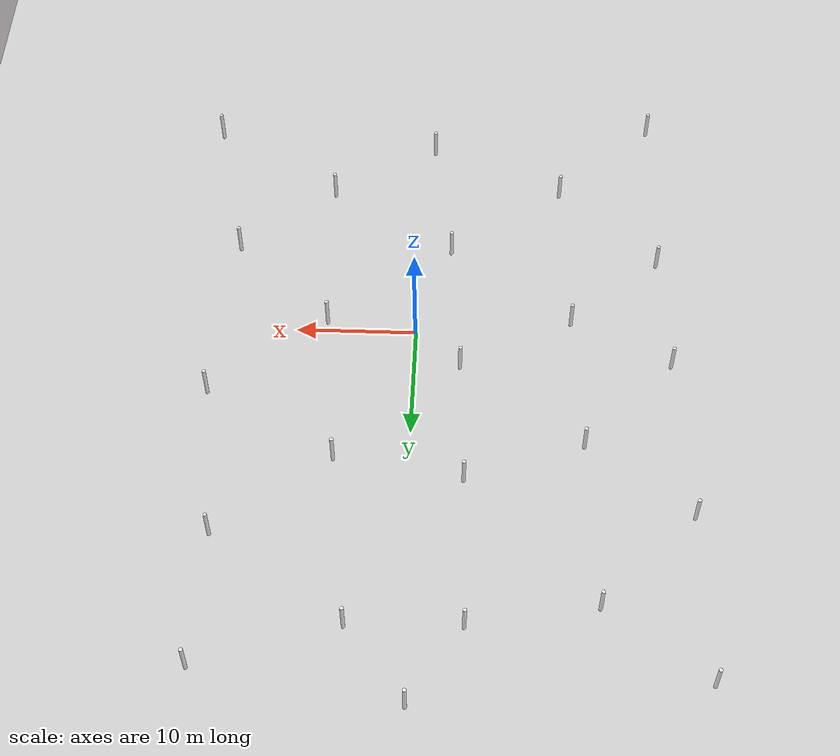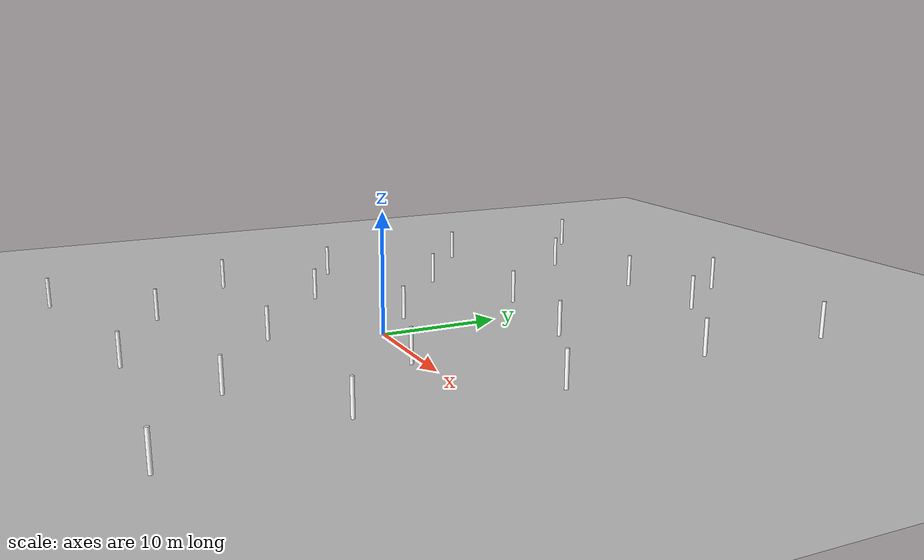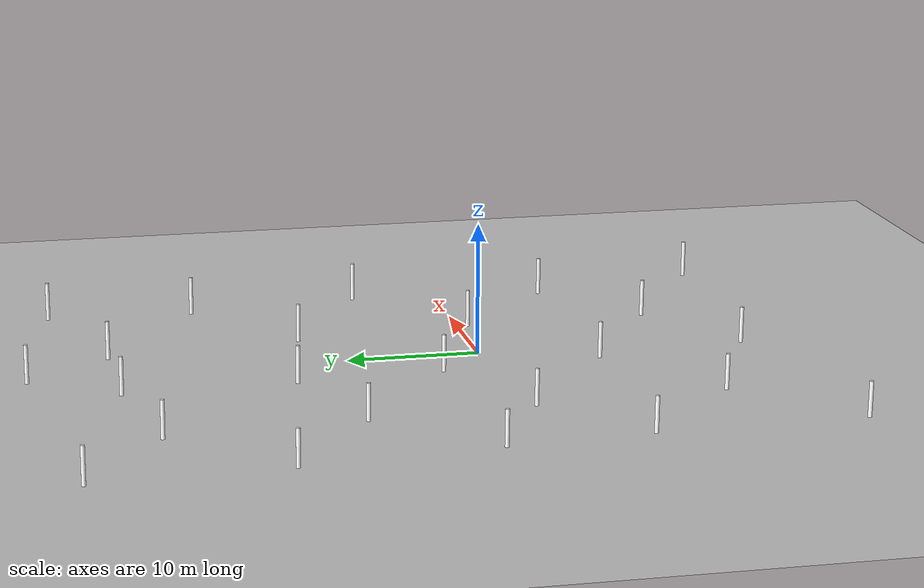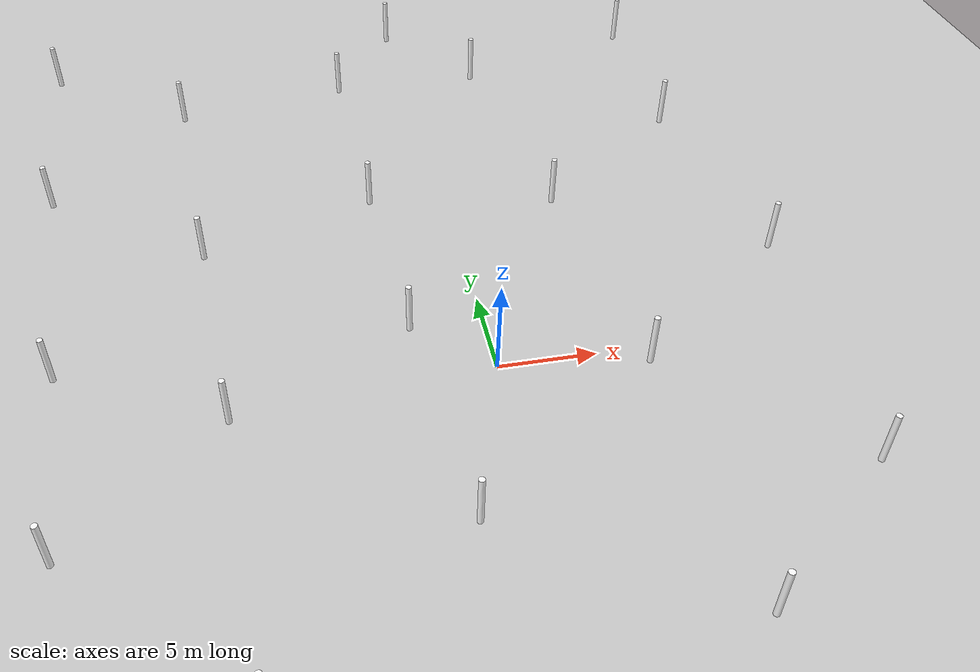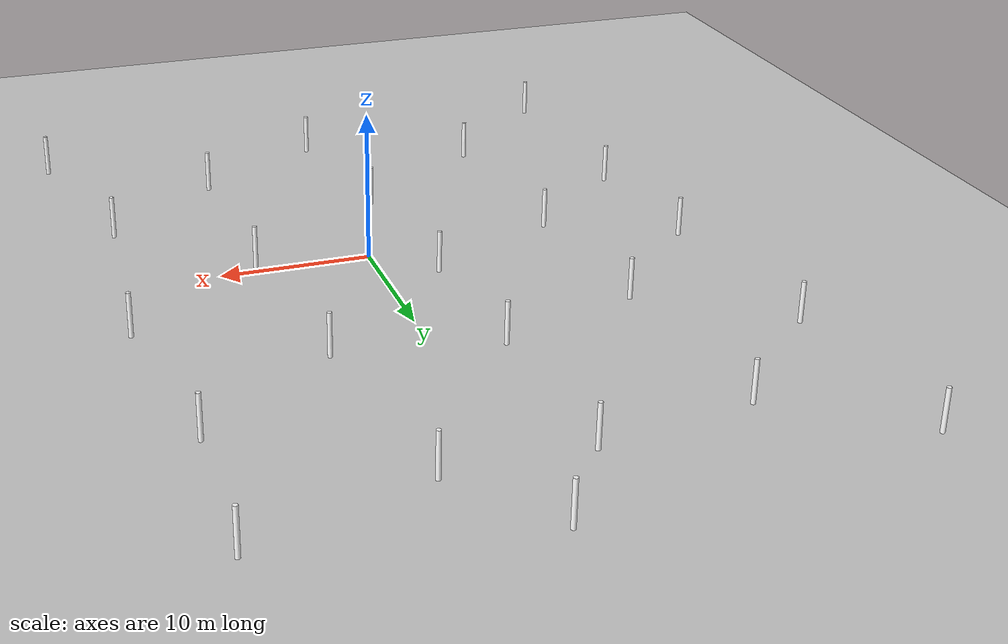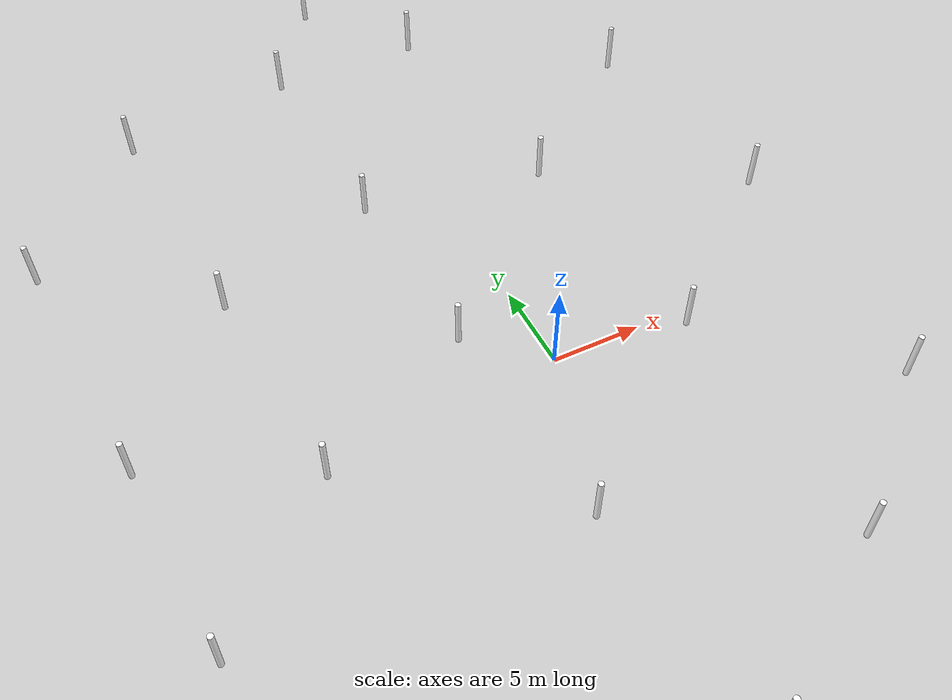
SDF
<sdf version="1.6">
  <world name="default">
    <include>
      <uri>model://sun</uri>
    </include>
    <include>
      <uri>model://ground_plane</uri>
    </include>
    <model name="SparsePillars">
      <pose>0 0 -1.5  0 0 0</pose>
      <static>true</static>
      <link name="up">
        <visual name="visual">
          <geometry>
            <mesh><uri>file:///home/huiyulin/Coding/TARE/multi_planning/Simulator/mrsl2_ws/src/mrsl_quadrotor/mrsl_quadrotor_description/worlds/SparsePillars.dae</uri></mesh>
          </geometry>
        </visual>
        <collision name='pillars'>
          <laser_retro>0</laser_retro>
          <max_contacts>10</max_contacts>
          <pose frame=''>0 0 -0.001 0 -0 0</pose>
          <geometry>
            <mesh>
              <uri>/home/huiyulin/Coding/TARE/multi_planning/Simulator/mrsl2_ws/src/mrsl_quadrotor/mrsl_quadrotor_description/worlds/SparsePillars.dae</uri>
              <scale>1 1 1</scale>
            </mesh>
          </geometry>
          <surface>
            <friction>
              <ode>
                <mu>1</mu>
                <mu2>1</mu2>
                <fdir1>0 0 0</fdir1>
                <slip1>0</slip1>
                <slip2>0</slip2>
              </ode>
              <torsional>
                <coefficient>1</coefficient>
                <patch_radius>0</patch_radius>
                <surface_radius>0</surface_radius>
                <use_patch_radius>1</use_patch_radius>
                <ode>
                  <slip>0</slip>
                </ode>
              </torsional>
            </friction>
            <bounce>
              <restitution_coefficient>0</restitution_coefficient>
              <threshold>1e+06</threshold>
            </bounce>
            <contact>
              <collide_without_contact>0</collide_without_contact>
              <collide_without_contact_bitmask>1</collide_without_contact_bitmask>
              <collide_bitmask>1</collide_bitmask>
              <ode>
                <soft_cfm>0</soft_cfm>
                <soft_erp>0.2</soft_erp>
                <kp>1e+13</kp>
                <kd>1</kd>
                <max_vel>0.01</max_vel>
                <min_depth>0</min_depth>
              </ode>
              <bullet>
                <split_impulse>1</split_impulse>
                <split_impulse_penetration_threshold>-0.01</split_impulse_penetration_threshold>
                <soft_cfm>0</soft_cfm>
                <soft_erp>0.2</soft_erp>
                <kp>1e+13</kp>
                <kd>1</kd>
              </bullet>
            </contact>
          </surface>
        </collision>
      </link>
    </model>
  </world>
</sdf>
